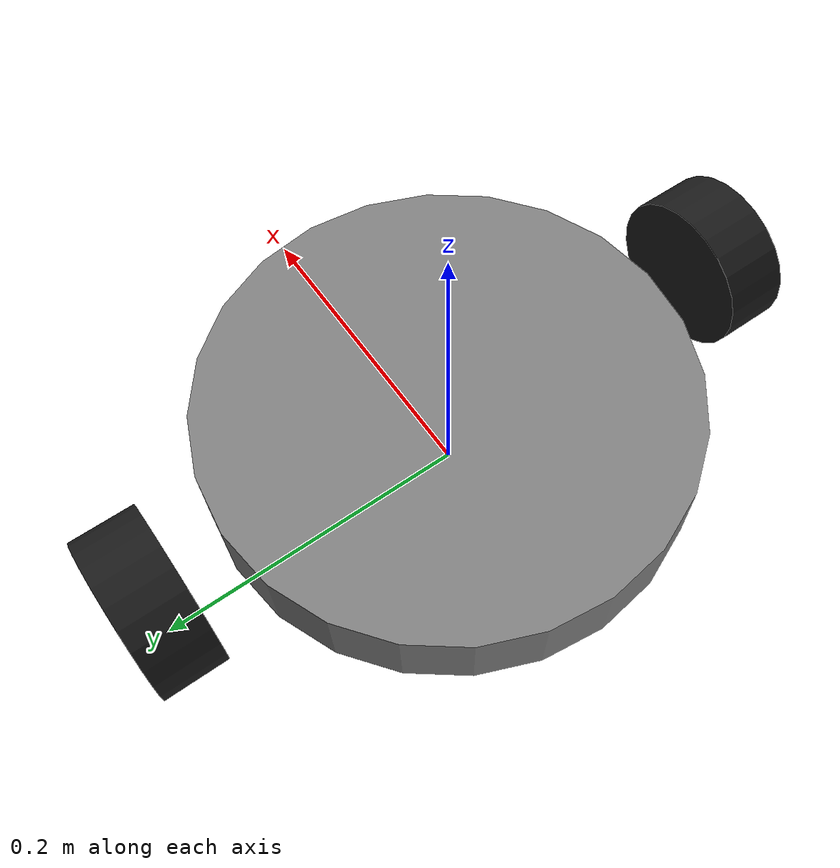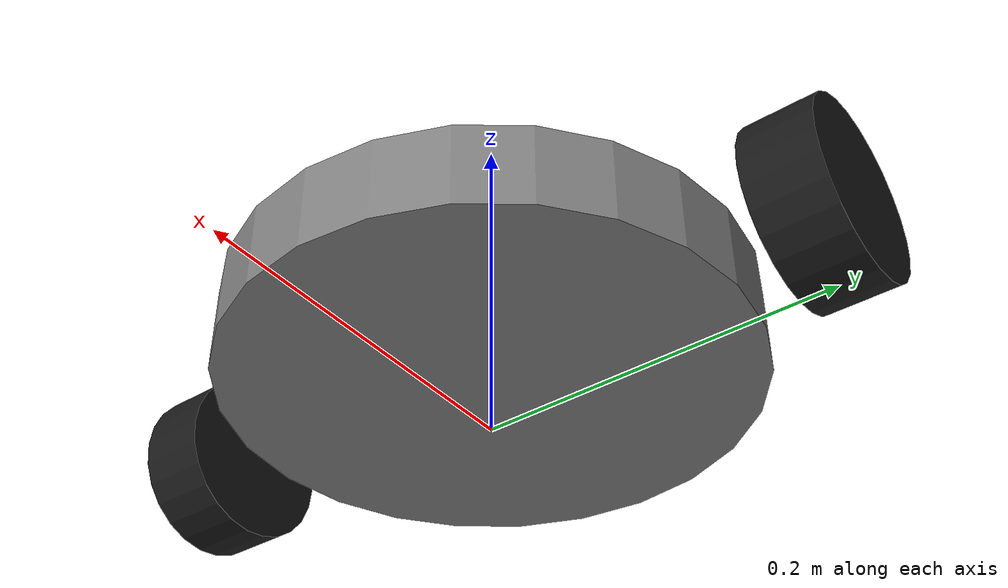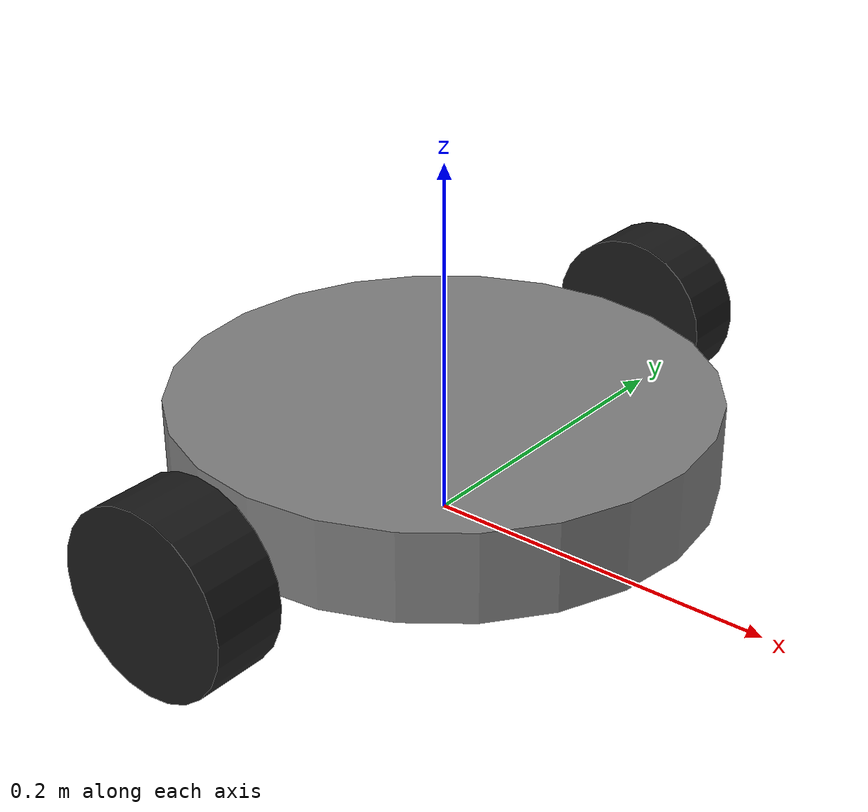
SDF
<?xml version="1.0"?>
<sdf version="1.6">
  <model name="front_driving_module">
    <!-- 모듈 베이스 (원판 형태) -->
    <link name="module_base">
      <pose>0 0 0.05 0 0 0</pose>
      <inertial>
        <mass>2.0</mass>
        <inertia>
          <ixx>0.02</ixx>
          <iyy>0.02</iyy>
          <izz>0.04</izz>
          <ixy>0</ixy>
          <ixz>0</ixz>
          <iyz>0</iyz>
        </inertia>
      </inertial>
      <collision name="collision">
        <geometry>
          <cylinder>
            <radius>0.15</radius>
            <length>0.05</length>
          </cylinder>
        </geometry>
      </collision>
      <visual name="visual">
        <geometry>
          <cylinder>
            <radius>0.15</radius>
            <length>0.05</length>
          </cylinder>
        </geometry>
        <material>
          <ambient>0.5 0.5 0.5 1</ambient>
          <diffuse>0.5 0.5 0.5 1</diffuse>
          <specular>0.1 0.1 0.1 1</specular>
        </material>
      </visual>
    </link>

    <!-- 좌측 바퀴 -->
    <link name="left_wheel">
      <pose>0 0.2 0.05 -1.5707 0 0</pose>
      <inertial>
        <mass>0.5</mass>
        <inertia>
          <ixx>0.001</ixx>
          <iyy>0.001</iyy>
          <izz>0.001</izz>
          <ixy>0</ixy>
          <ixz>0</ixz>
          <iyz>0</iyz>
        </inertia>
      </inertial>
      <collision name="collision">
        <geometry>
          <cylinder>
            <radius>0.05</radius>
            <length>0.04</length>
          </cylinder>
        </geometry>
        <surface>
          <friction>
            <ode>
              <mu>0.8</mu>
              <mu2>0.8</mu2>
            </ode>
          </friction>
        </surface>
      </collision>
      <visual name="visual">
        <geometry>
          <cylinder>
            <radius>0.05</radius>
            <length>0.04</length>
          </cylinder>
        </geometry>
        <material>
          <ambient>0.1 0.1 0.1 1</ambient>
          <diffuse>0.1 0.1 0.1 1</diffuse>
          <specular>0.1 0.1 0.1 1</specular>
        </material>
      </visual>
    </link>

    <!-- 우측 바퀴 -->
    <link name="right_wheel">
      <pose>0 -0.2 0.05 -1.5707 0 0</pose>
      <inertial>
        <mass>0.5</mass>
        <inertia>
          <ixx>0.001</ixx>
          <iyy>0.001</iyy>
          <izz>0.001</izz>
          <ixy>0</ixy>
          <ixz>0</ixz>
          <iyz>0</iyz>
        </inertia>
      </inertial>
      <collision name="collision">
        <geometry>
          <cylinder>
            <radius>0.05</radius>
            <length>0.04</length>
          </cylinder>
        </geometry>
        <surface>
          <friction>
            <ode>
              <mu>0.8</mu>
              <mu2>0.8</mu2>
            </ode>
          </friction>
        </surface>
      </collision>
      <visual name="visual">
        <geometry>
          <cylinder>
            <radius>0.05</radius>
            <length>0.04</length>
          </cylinder>
        </geometry>
        <material>
          <ambient>0.1 0.1 0.1 1</ambient>
          <diffuse>0.1 0.1 0.1 1</diffuse>
          <specular>0.1 0.1 0.1 1</specular>
        </material>
      </visual>
    </link>

    <!-- 좌측 바퀴 조인트 -->
    <joint name="left_wheel_joint" type="revolute">
      <parent>module_base</parent>
      <child>left_wheel</child>
      <axis>
        <xyz>0 0 1</xyz>
        <limit>
          <lower>-1e+16</lower>
          <upper>1e+16</upper>
        </limit>
      </axis>
    </joint>

    <!-- 우측 바퀴 조인트 -->
    <joint name="right_wheel_joint" type="revolute">
      <parent>module_base</parent>
      <child>right_wheel</child>
      <axis>
        <xyz>0 0 1</xyz>
        <limit>
          <lower>-1e+16</lower>
          <upper>1e+16</upper>
        </limit>
      </axis>
    </joint>
  </model>
</sdf>
